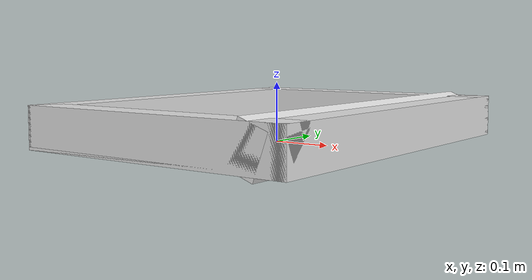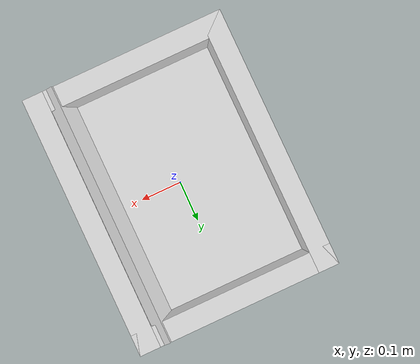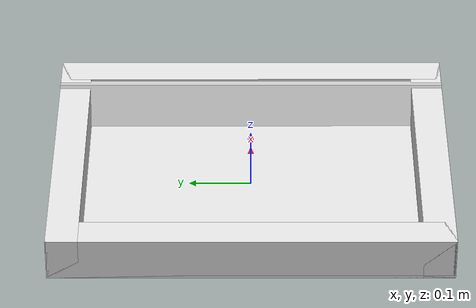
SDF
<?xml version="1.0"?>
<sdf version="1.7">
  <model name="bin_model">
    <!--
    Axes:
      +X - Pointing towards front (slope)
      +Y - Pointing to left side
      +Z - Up
    Origin:
      (0, 0, 0) at the center bottom of the bin
    -->
    <link name="bin_base">
      <inertial>
        <mass>6.233</mass>
        <inertia>
          <ixx>0.263</ixx>
          <ixy>0</ixy>
          <ixz>0</ixz>
          <iyy>0.177</iyy>
          <iyz>0</iyz>
          <izz>0.4</izz>
        </inertia>
      </inertial>
      <!-- Front Wall -->
      <visual name="front_visual">
        <pose>0.22 0 0.035 0 0 0</pose>
        <geometry>
          <box>
            <size>0.05 0.63 0.07</size>
          </box>
        </geometry>
        <material>
          <diffuse>0.9 0.9 0.9 1.0</diffuse>
        </material>
      </visual>
      <collision name="front_collision">
        <pose>0.22 0 0.035 0 0 0</pose>
        <geometry>
          <box>
            <size>0.05 0.63 0.07</size>
          </box>
        </geometry>
      </collision>
      <!-- Slope Wall -->
      <visual name="slope_visual">
        <pose>0.182 0 0.034 0 0.35 0</pose>
        <geometry>
          <box>
            <size>0.05 0.63 0.07</size>
          </box>
        </geometry>
        <material>
          <diffuse>0.9 0.9 0.9 1.0</diffuse>
        </material>
      </visual>
      <collision name="slope_collision">
        <pose>0.182 0 0.034 0 0.35 0</pose>
        <geometry>
          <box>
            <size>0.05 0.63 0.07</size>
          </box>
        </geometry>
      </collision>
      <!-- Back Wall -->
      <visual name="back_visual">
        <pose>-0.22 0 0.035 0 0 0</pose>
        <geometry>
          <box>
            <size>0.05 0.63 0.07</size>
          </box>
        </geometry>
        <material>
          <diffuse>0.9 0.9 0.9 1.0</diffuse>
        </material>
      </visual>
      <collision name="back_collision">
        <pose>-0.22 0 0.035 0 0 0</pose>
        <geometry>
          <box>
            <size>0.05 0.63 0.07</size>
          </box>
        </geometry>
      </collision>
      <!-- Left Wall -->
      <visual name="left_visual">
        <pose>0 0.29 0.035 0 0 0</pose>
        <geometry>
          <box>
            <size>0.49 0.05 0.07</size>
          </box>
        </geometry>
        <material>
          <diffuse>0.9 0.9 0.9 1.0</diffuse>
        </material>
      </visual>
      <collision name="left_collision">
        <pose>0 0.29 0.035 0 0 0</pose>
        <geometry>
          <box>
            <size>0.49 0.05 0.07</size>
          </box>
        </geometry>
      </collision>
      <!-- Right Wall -->
      <visual name="right_visual">
        <pose>0 -0.29 0.035 0 0 0</pose>
        <geometry>
          <box>
            <size>0.49 0.05 0.07</size>
          </box>
        </geometry>
        <material>
          <diffuse>0.9 0.9 0.9 1.0</diffuse>
        </material>
      </visual>
      <collision name="right_collision">
        <pose>0 -0.29 0.035 0 0 0</pose>
        <geometry>
          <box>
            <size>0.49 0.05 0.07</size>
          </box>
        </geometry>
      </collision>
      <!-- Bottom -->
      <visual name="bottom_visual">
        <pose>0.0 0.0 0.0025 0 0 0</pose>
        <geometry>
          <box>
            <size>0.49 0.63 0.005</size>
          </box>
        </geometry>
        <material>
          <diffuse>0.9 0.9 0.9 1.0</diffuse>
        </material>
      </visual>
      <collision name="bottom_collision">
        <pose>0.0 0.0 0.0025 0 0 0</pose>
        <geometry>
          <box>
            <size>0.49 0.63 0.005</size>
          </box>
        </geometry>
      </collision>
    </link>
    <!-- Update the frame to the new top position -->
    <frame name="bin_front_top_center">
      <pose relative_to="bin_base">0.22 0 0.07 0 0 0</pose>
    </frame>
  </model>
</sdf>
